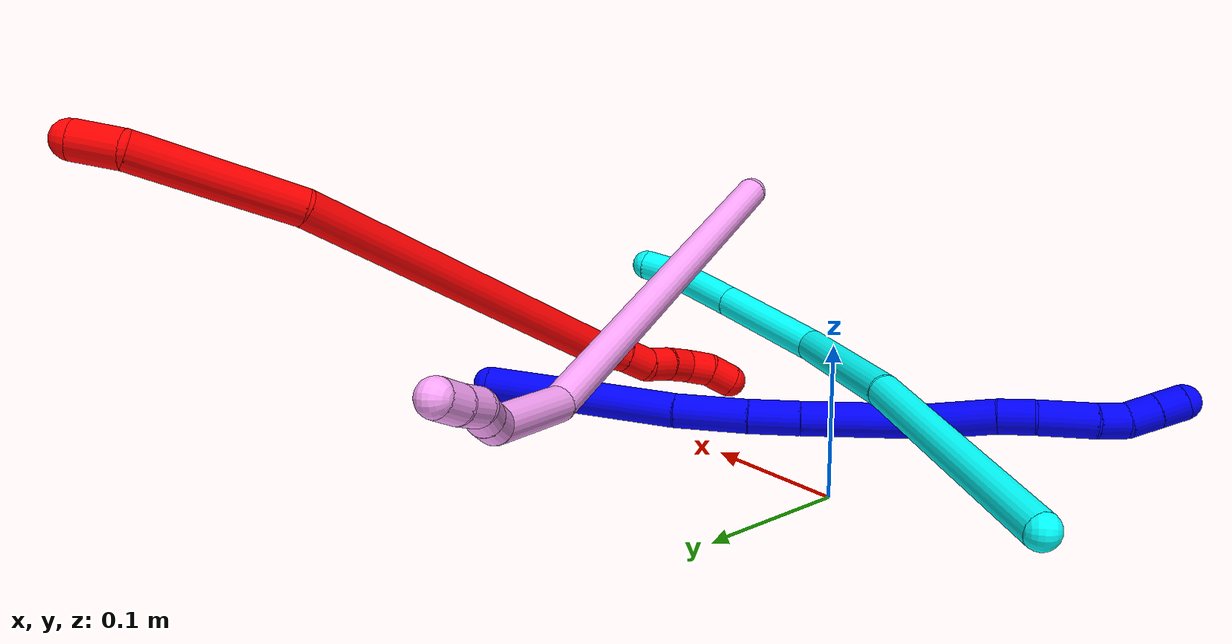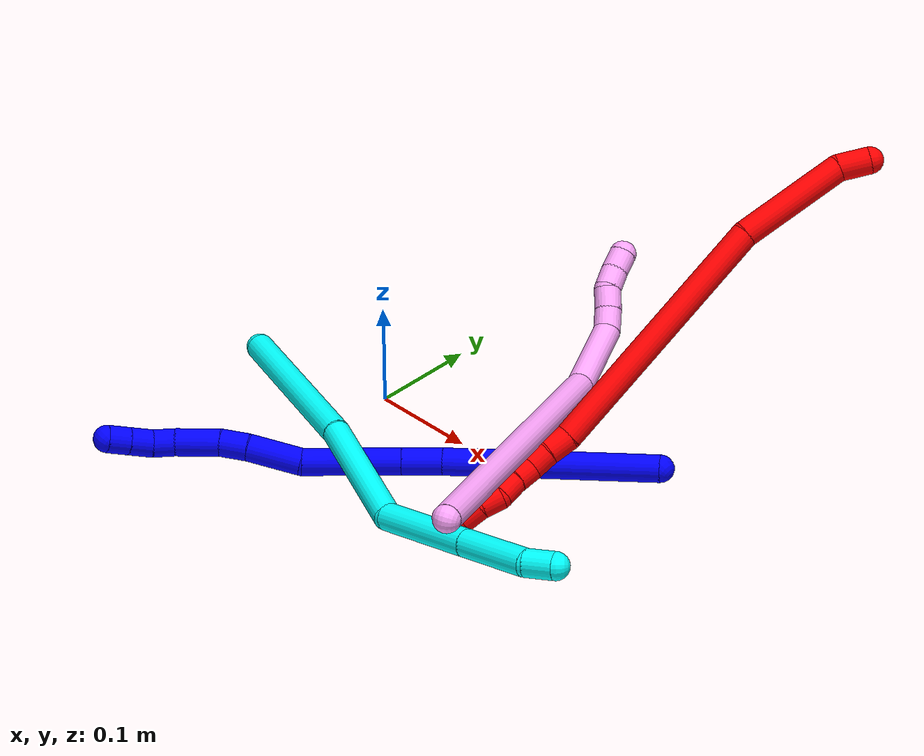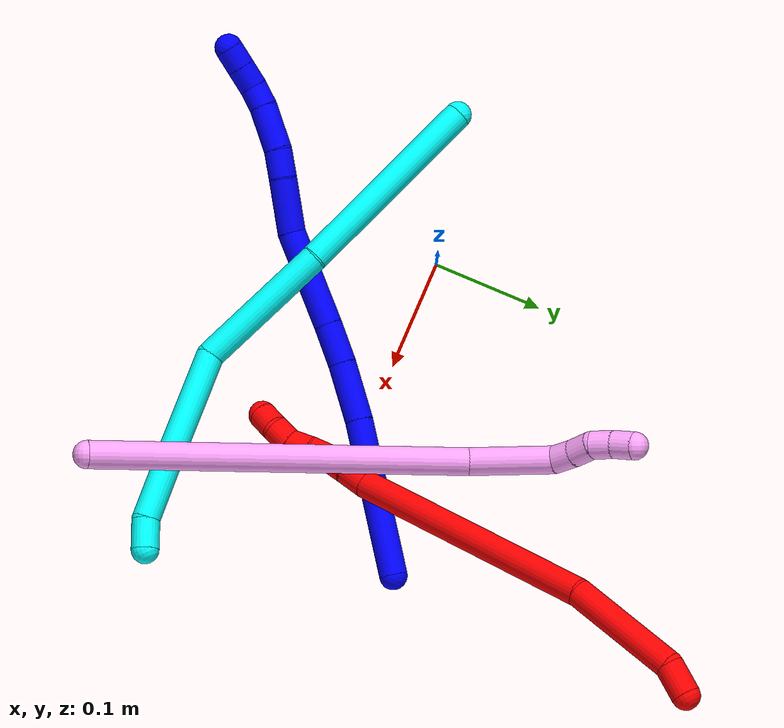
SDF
<sdf version="1.7">
 <world name="default">
  <plugin name="TubeGeneratorPlugin" filename="libtube_generator_plugin.so"/>
  <model name="photoneo_s_sensor">
   <static>1</static>
   <pose>0 0 2 1.57079 1.57079 3.14159</pose>
   <link name="link">
    <inertial><mass>0.1</mass></inertial>
    <sensor name="sensor" type="depth">
     <update_rate>30</update_rate>
     <camera>
      <horizontal_fov>1.22</horizontal_fov>
      <image><width>1920</width><height>1200</height><format>B8G8R8</format></image>
      <clip><near>0.1</near><far>4</far></clip>
      <depth_camera><output>points</output></depth_camera>
     </camera>
     <plugin name="camera_plugin" filename="libgazebo_ros_depth_camera.so">
      <baseline>0.2</baseline>
      <alwaysOn>1</alwaysOn>
      <updateRate>0.0</updateRate>
      <cameraName>camera_ir</cameraName>
      <imageTopicName>/camera/color/image_raw</imageTopicName>
      <cameraInfoTopicName>/camera/color/camera_info</cameraInfoTopicName>
      <depthImageTopicName>/camera/depth/image_raw</depthImageTopicName>
      <depthImageCameraInfoTopicName>/camera/depth/camera_info</depthImageCameraInfoTopicName>
      <pointCloudTopicName>/camera/depth/points</pointCloudTopicName>
      <frameName>fr_optical</frameName>
      <pointCloudCutoff>0.1</pointCloudCutoff>
      <pointCloudCutoffMax>2.0</pointCloudCutoffMax>
      <distortionK1>0</distortionK1>
      <distortionK2>0</distortionK2>
      <distortionK3>0</distortionK3>
      <distortionT1>0</distortionT1>
      <distortionT2>0</distortionT2>
      <CxPrime>0</CxPrime>
      <Cx>0</Cx>
      <Cy>0</Cy>
      <focalLength>0</focalLength>
      <hackBaseline>0</hackBaseline>
     </plugin>
    </sensor>
   </link>
  </model>
  <gravity>0 0 -9.8</gravity>
  <magnetic_field>6e-06 2.3e-05 -4.2e-05</magnetic_field>
  <atmosphere type="adiabatic"/>
  <physics name="default_physics" default="0" type="ode">
   <max_step_size>0.003</max_step_size>
   <real_time_factor>1</real_time_factor>
   <real_time_update_rate>1000</real_time_update_rate>
   <max_contacts>10000</max_contacts>
   <ode>
    <solver>
     <type>quick</type>
     <iters>100</iters>
     <sor>1.3</sor>
     <use_dynamic_moi_rescaling>0</use_dynamic_moi_rescaling>
    </solver>
    <constraints>
     <contact_max_correcting_vel>0</contact_max_correcting_vel>
     <contact_surface_layer>0.001</contact_surface_layer>
     <cfm>0</cfm>
     <erp>0.2</erp>
    </constraints>
   </ode>
  </physics>
  <scene><ambient>0.4 0.4 0.4 1</ambient><background>0.7 0.7 0.7 1</background><shadows>0</shadows></scene>
  <audio><device>default</device></audio>
  <spherical_coordinates>
   <surface_model>EARTH_WGS84</surface_model>
   <latitude_deg>0</latitude_deg>
   <longitude_deg>0</longitude_deg>
   <elevation>0</elevation>
   <heading_deg>0</heading_deg>
  </spherical_coordinates>
  <model name="bin">
   <static>1</static>
   <link name="bottom">
    <collision name="collision-bottom">
     <pose>0 0 -0.01 0 -0 0</pose>
     <geometry><box><size>0.8 0.6 0.02</size></box></geometry>
     <surface>
      <friction><ode><mu>100</mu><mu2>100</mu2></ode></friction>
      <contact><collide_bitmask>65535</collide_bitmask></contact>
     </surface>
    </collision>
   </link>
   <link name="west_wall">
    <collision name="collision-west_wall">
     <pose>-0.41 0 0.1 0 -0 0</pose>
     <geometry><box><size>0.02 0.6 0.2</size></box></geometry>
     <surface>
      <friction><ode><mu>100</mu><mu2>100</mu2></ode></friction>
      <contact><collide_bitmask>65535</collide_bitmask></contact>
     </surface>
    </collision>
   </link>
   <link name="east_wall">
    <collision name="collision-east_wall">
     <pose>0.41 0 0.1 0 -0 0</pose>
     <geometry><box><size>0.02 0.6 0.2</size></box></geometry>
     <surface>
      <friction><ode><mu>100</mu><mu2>100</mu2></ode></friction>
      <contact><collide_bitmask>65535</collide_bitmask></contact>
     </surface>
    </collision>
   </link>
   <link name="south_wall">
    <collision name="collision-south_wall">
     <pose>0 -0.31 0.1 0 -0 0</pose>
     <geometry><box><size>0.8 0.02 0.2</size></box></geometry>
     <surface>
      <friction><ode><mu>100</mu><mu2>100</mu2></ode></friction>
      <contact><collide_bitmask>65535</collide_bitmask></contact>
     </surface>
    </collision>
   </link>
   <link name="north_wall">
    <collision name="collision-north_wall">
     <pose>0 0.31 0.1 0 -0 0</pose>
     <geometry><box><size>0.8 0.02 0.2</size></box></geometry>
     <surface>
      <friction><ode><mu>100</mu><mu2>100</mu2></ode></friction>
      <contact><collide_bitmask>65535</collide_bitmask></contact>
     </surface>
    </collision>
   </link>
  </model>
  <model name="1">
   <static>0</static>
   <link name="1">
    <collision name="collision-cylinder-e_1_1_4">
     <pose>-0.028113 -0.036116 -0.05442 2.55568 -0.406457 -1.1987</pose>
     <geometry><cylinder><radius>0.0125</radius><length>0.142215</length></cylinder></geometry>
     <surface>
      <friction><ode><mu>1.16</mu><mu2>1.16</mu2><slip1>0</slip1><slip2>0</slip2></ode></friction>
      <contact><ode><kp>1e+06</kp><kd>1</kd><max_vel>0</max_vel><min_depth>0.001</min_depth></ode></contact>
     </surface>
    </collision>
    <visual name="visual-cylinder-e_1_1_4">
     <pose>-0.028113 -0.036116 -0.05442 2.55568 -0.406457 -1.1987</pose>
     <geometry><cylinder><radius>0.0125</radius><length>0.142215</length></cylinder></geometry>
     <material><ambient>0 0 1 1</ambient></material>
    </visual>
    <collision name="collision-cylinder-e_2_4_5">
     <pose>-0.068765 -0.085258 -0.128503 2.55652 -0.488634 -1.38286</pose>
     <geometry><cylinder><radius>0.0125</radius><length>0.053423</length></cylinder></geometry>
     <surface>
      <friction><ode><mu>1.16</mu><mu2>1.16</mu2><slip1>0</slip1><slip2>0</slip2></ode></friction>
      <contact><ode><kp>1e+06</kp><kd>1</kd><max_vel>0</max_vel><min_depth>0.001</min_depth></ode></contact>
     </surface>
    </collision>
    <visual name="visual-cylinder-e_2_4_5">
     <pose>-0.068765 -0.085258 -0.128503 2.55652 -0.488634 -1.38286</pose>
     <geometry><cylinder><radius>0.0125</radius><length>0.053423</length></cylinder></geometry>
     <material><ambient>0 0 1 1</ambient></material>
    </visual>
    <collision name="collision-cylinder-e_3_5_6">
     <pose>-0.091018 -0.107223 -0.161181 2.53977 -0.55153 -1.47863</pose>
     <geometry><cylinder><radius>0.0125</radius><length>0.037077</length></cylinder></geometry>
     <surface>
      <friction><ode><mu>1.16</mu><mu2>1.16</mu2><slip1>0</slip1><slip2>0</slip2></ode></friction>
      <contact><ode><kp>1e+06</kp><kd>1</kd><max_vel>0</max_vel><min_depth>0.001</min_depth></ode></contact>
     </surface>
    </collision>
    <visual name="visual-cylinder-e_3_5_6">
     <pose>-0.091018 -0.107223 -0.161181 2.53977 -0.55153 -1.47863</pose>
     <geometry><cylinder><radius>0.0125</radius><length>0.037077</length></cylinder></geometry>
     <material><ambient>0 0 1 1</ambient></material>
    </visual>
    <collision name="collision-cylinder-e_4_6_7">
     <pose>-0.12508 -0.137555 -0.204759 2.53089 -0.578246 -1.51286</pose>
     <geometry><cylinder><radius>0.0125</radius><length>0.089097</length></cylinder></geometry>
     <surface>
      <friction><ode><mu>1.16</mu><mu2>1.16</mu2><slip1>0</slip1><slip2>0</slip2></ode></friction>
      <contact><ode><kp>1e+06</kp><kd>1</kd><max_vel>0</max_vel><min_depth>0.001</min_depth></ode></contact>
     </surface>
    </collision>
    <visual name="visual-cylinder-e_4_6_7">
     <pose>-0.12508 -0.137555 -0.204759 2.53089 -0.578246 -1.51286</pose>
     <geometry><cylinder><radius>0.0125</radius><length>0.089097</length></cylinder></geometry>
     <material><ambient>0 0 1 1</ambient></material>
    </visual>
    <collision name="collision-cylinder-e_5_7_8">
     <pose>-0.160595 -0.165767 -0.256257 2.82669 -0.469372 -1.96924</pose>
     <geometry><cylinder><radius>0.0125</radius><length>0.049376</length></cylinder></geometry>
     <surface>
      <friction><ode><mu>1.16</mu><mu2>1.16</mu2><slip1>0</slip1><slip2>0</slip2></ode></friction>
      <contact><ode><kp>1e+06</kp><kd>1</kd><max_vel>0</max_vel><min_depth>0.001</min_depth></ode></contact>
     </surface>
    </collision>
    <visual name="visual-cylinder-e_5_7_8">
     <pose>-0.160595 -0.165767 -0.256257 2.82669 -0.469372 -1.96924</pose>
     <geometry><cylinder><radius>0.0125</radius><length>0.049376</length></cylinder></geometry>
     <material><ambient>0 0 1 1</ambient></material>
    </visual>
    <collision name="collision-cylinder-e_6_8_9">
     <pose>-0.177135 -0.177431 -0.287728 2.71057 -0.433912 -1.5777</pose>
     <geometry><cylinder><radius>0.0125</radius><length>0.02556</length></cylinder></geometry>
     <surface>
      <friction><ode><mu>1.16</mu><mu2>1.16</mu2><slip1>0</slip1><slip2>0</slip2></ode></friction>
      <contact><ode><kp>1e+06</kp><kd>1</kd><max_vel>0</max_vel><min_depth>0.001</min_depth></ode></contact>
     </surface>
    </collision>
    <visual name="visual-cylinder-e_6_8_9">
     <pose>-0.177135 -0.177431 -0.287728 2.71057 -0.433912 -1.5777</pose>
     <geometry><cylinder><radius>0.0125</radius><length>0.02556</length></cylinder></geometry>
     <material><ambient>0 0 1 1</ambient></material>
    </visual>
    <collision name="collision-cylinder-e_7_9_10">
     <pose>-0.192778 -0.192266 -0.312857 2.54133 -0.526087 -1.43211</pose>
     <geometry><cylinder><radius>0.0125</radius><length>0.040903</length></cylinder></geometry>
     <surface>
      <friction><ode><mu>1.16</mu><mu2>1.16</mu2><slip1>0</slip1><slip2>0</slip2></ode></friction>
      <contact><ode><kp>1e+06</kp><kd>1</kd><max_vel>0</max_vel><min_depth>0.001</min_depth></ode></contact>
     </surface>
    </collision>
    <visual name="visual-cylinder-e_7_9_10">
     <pose>-0.192778 -0.192266 -0.312857 2.54133 -0.526087 -1.43211</pose>
     <geometry><cylinder><radius>0.0125</radius><length>0.040903</length></cylinder></geometry>
     <material><ambient>0 0 1 1</ambient></material>
    </visual>
    <collision name="collision-cylinder-e_8_10_11">
     <pose>-0.209301 -0.207286 -0.333842 2.47482 -0.655504 -1.55244</pose>
     <geometry><cylinder><radius>0.0125</radius><length>0.020517</length></cylinder></geometry>
     <surface>
      <friction><ode><mu>1.16</mu><mu2>1.16</mu2><slip1>0</slip1><slip2>0</slip2></ode></friction>
      <contact><ode><kp>1e+06</kp><kd>1</kd><max_vel>0</max_vel><min_depth>0.001</min_depth></ode></contact>
     </surface>
    </collision>
    <visual name="visual-cylinder-e_8_10_11">
     <pose>-0.209301 -0.207286 -0.333842 2.47482 -0.655504 -1.55244</pose>
     <geometry><cylinder><radius>0.0125</radius><length>0.020517</length></cylinder></geometry>
     <material><ambient>0 0 1 1</ambient></material>
    </visual>
    <collision name="collision-cylinder-e_9_11_12">
     <pose>-0.223952 -0.214993 -0.346605 2.74374 -0.882118 -2.33441</pose>
     <geometry><cylinder><radius>0.0125</radius><length>0.021752</length></cylinder></geometry>
     <surface>
      <friction><ode><mu>1.16</mu><mu2>1.16</mu2><slip1>0</slip1><slip2>0</slip2></ode></friction>
      <contact><ode><kp>1e+06</kp><kd>1</kd><max_vel>0</max_vel><min_depth>0.001</min_depth></ode></contact>
     </surface>
    </collision>
    <visual name="visual-cylinder-e_9_11_12">
     <pose>-0.223952 -0.214993 -0.346605 2.74374 -0.882118 -2.33441</pose>
     <geometry><cylinder><radius>0.0125</radius><length>0.021752</length></cylinder></geometry>
     <material><ambient>0 0 1 1</ambient></material>
    </visual>
    <collision name="collision-cylinder-e_10_12_2">
     <pose>-0.240101 -0.220102 -0.358875 2.75072 -0.882276 -2.34759</pose>
     <geometry><cylinder><radius>0.0125</radius><length>0.02008</length></cylinder></geometry>
     <surface>
      <friction><ode><mu>1.16</mu><mu2>1.16</mu2><slip1>0</slip1><slip2>0</slip2></ode></friction>
      <contact><ode><kp>1e+06</kp><kd>1</kd><max_vel>0</max_vel><min_depth>0.001</min_depth></ode></contact>
     </surface>
    </collision>
    <visual name="visual-cylinder-e_10_12_2">
     <pose>-0.240101 -0.220102 -0.358875 2.75072 -0.882276 -2.34759</pose>
     <geometry><cylinder><radius>0.0125</radius><length>0.02008</length></cylinder></geometry>
     <material><ambient>0 0 1 1</ambient></material>
    </visual>
    <collision name="collision-sphere-2">
     <pose>-0.247854 -0.222532 -0.364773 0 -0 0</pose>
     <geometry><sphere><radius>0.0125</radius></sphere></geometry>
     <surface>
      <friction><ode><mu>1.16</mu><mu2>1.16</mu2><slip1>0</slip1><slip2>0</slip2></ode></friction>
      <contact><ode><kp>1e+06</kp><kd>1</kd><max_vel>0</max_vel><min_depth>0.001</min_depth></ode></contact>
     </surface>
    </collision>
    <visual name="visual-sphere-2">
     <pose>-0.247854 -0.222532 -0.364773 0 -0 0</pose>
     <geometry><sphere><radius>0.0125</radius></sphere></geometry>
     <material><ambient>0 0 1 1</ambient></material>
    </visual>
    <collision name="collision-sphere-12">
     <pose>-0.232349 -0.217671 -0.352977 0 -0 0</pose>
     <geometry><sphere><radius>0.0125</radius></sphere></geometry>
     <surface>
      <friction><ode><mu>1.16</mu><mu2>1.16</mu2><slip1>0</slip1><slip2>0</slip2></ode></friction>
      <contact><ode><kp>1e+06</kp><kd>1</kd><max_vel>0</max_vel><min_depth>0.001</min_depth></ode></contact>
     </surface>
    </collision>
    <visual name="visual-sphere-12">
     <pose>-0.232349 -0.217671 -0.352977 0 -0 0</pose>
     <geometry><sphere><radius>0.0125</radius></sphere></geometry>
     <material><ambient>0 0 1 1</ambient></material>
    </visual>
    <collision name="collision-sphere-11">
     <pose>-0.215554 -0.212315 -0.340233 0 -0 0</pose>
     <geometry><sphere><radius>0.0125</radius></sphere></geometry>
     <surface>
      <friction><ode><mu>1.16</mu><mu2>1.16</mu2><slip1>0</slip1><slip2>0</slip2></ode></friction>
      <contact><ode><kp>1e+06</kp><kd>1</kd><max_vel>0</max_vel><min_depth>0.001</min_depth></ode></contact>
     </surface>
    </collision>
    <visual name="visual-sphere-11">
     <pose>-0.215554 -0.212315 -0.340233 0 -0 0</pose>
     <geometry><sphere><radius>0.0125</radius></sphere></geometry>
     <material><ambient>0 0 1 1</ambient></material>
    </visual>
    <collision name="collision-sphere-10">
     <pose>-0.203048 -0.202256 -0.327452 0 -0 0</pose>
     <geometry><sphere><radius>0.0125</radius></sphere></geometry>
     <surface>
      <friction><ode><mu>1.16</mu><mu2>1.16</mu2><slip1>0</slip1><slip2>0</slip2></ode></friction>
      <contact><ode><kp>1e+06</kp><kd>1</kd><max_vel>0</max_vel><min_depth>0.001</min_depth></ode></contact>
     </surface>
    </collision>
    <visual name="visual-sphere-10">
     <pose>-0.203048 -0.202256 -0.327452 0 -0 0</pose>
     <geometry><sphere><radius>0.0125</radius></sphere></geometry>
     <material><ambient>0 0 1 1</ambient></material>
    </visual>
    <collision name="collision-sphere-9">
     <pose>-0.182508 -0.182276 -0.298263 0 -0 0</pose>
     <geometry><sphere><radius>0.0125</radius></sphere></geometry>
     <surface>
      <friction><ode><mu>1.16</mu><mu2>1.16</mu2><slip1>0</slip1><slip2>0</slip2></ode></friction>
      <contact><ode><kp>1e+06</kp><kd>1</kd><max_vel>0</max_vel><min_depth>0.001</min_depth></ode></contact>
     </surface>
    </collision>
    <visual name="visual-sphere-9">
     <pose>-0.182508 -0.182276 -0.298263 0 -0 0</pose>
     <geometry><sphere><radius>0.0125</radius></sphere></geometry>
     <material><ambient>0 0 1 1</ambient></material>
    </visual>
    <collision name="collision-sphere-4">
     <pose>-0.056226 -0.072232 -0.10884 0 -0 0</pose>
     <geometry><sphere><radius>0.0125</radius></sphere></geometry>
     <surface>
      <friction><ode><mu>1.16</mu><mu2>1.16</mu2><slip1>0</slip1><slip2>0</slip2></ode></friction>
      <contact><ode><kp>1e+06</kp><kd>1</kd><max_vel>0</max_vel><min_depth>0.001</min_depth></ode></contact>
     </surface>
    </collision>
    <visual name="visual-sphere-4">
     <pose>-0.056226 -0.072232 -0.10884 0 -0 0</pose>
     <geometry><sphere><radius>0.0125</radius></sphere></geometry>
     <material><ambient>0 0 1 1</ambient></material>
    </visual>
    <collision name="collision-sphere-1">
     <geometry><sphere><radius>0.0125</radius></sphere></geometry>
     <surface>
      <friction><ode><mu>1.16</mu><mu2>1.16</mu2><slip1>0</slip1><slip2>0</slip2></ode></friction>
      <contact><ode><kp>1e+06</kp><kd>1</kd><max_vel>0</max_vel><min_depth>0.001</min_depth></ode></contact>
     </surface>
    </collision>
    <visual name="visual-sphere-1">
     <geometry><sphere><radius>0.0125</radius></sphere></geometry>
     <material><ambient>0 0 1 1</ambient></material>
    </visual>
    <collision name="collision-sphere-8">
     <pose>-0.171762 -0.172587 -0.277193 0 -0 0</pose>
     <geometry><sphere><radius>0.0125</radius></sphere></geometry>
     <surface>
      <friction><ode><mu>1.16</mu><mu2>1.16</mu2><slip1>0</slip1><slip2>0</slip2></ode></friction>
      <contact><ode><kp>1e+06</kp><kd>1</kd><max_vel>0</max_vel><min_depth>0.001</min_depth></ode></contact>
     </surface>
    </collision>
    <visual name="visual-sphere-8">
     <pose>-0.171762 -0.172587 -0.277193 0 -0 0</pose>
     <geometry><sphere><radius>0.0125</radius></sphere></geometry>
     <material><ambient>0 0 1 1</ambient></material>
    </visual>
    <collision name="collision-sphere-5">
     <pose>-0.081304 -0.098283 -0.148165 0 -0 0</pose>
     <geometry><sphere><radius>0.0125</radius></sphere></geometry>
     <surface>
      <friction><ode><mu>1.16</mu><mu2>1.16</mu2><slip1>0</slip1><slip2>0</slip2></ode></friction>
      <contact><ode><kp>1e+06</kp><kd>1</kd><max_vel>0</max_vel><min_depth>0.001</min_depth></ode></contact>
     </surface>
    </collision>
    <visual name="visual-sphere-5">
     <pose>-0.081304 -0.098283 -0.148165 0 -0 0</pose>
     <geometry><sphere><radius>0.0125</radius></sphere></geometry>
     <material><ambient>0 0 1 1</ambient></material>
    </visual>
    <collision name="collision-sphere-6">
     <pose>-0.100732 -0.116162 -0.174196 0 -0 0</pose>
     <geometry><sphere><radius>0.0125</radius></sphere></geometry>
     <surface>
      <friction><ode><mu>1.16</mu><mu2>1.16</mu2><slip1>0</slip1><slip2>0</slip2></ode></friction>
      <contact><ode><kp>1e+06</kp><kd>1</kd><max_vel>0</max_vel><min_depth>0.001</min_depth></ode></contact>
     </surface>
    </collision>
    <visual name="visual-sphere-6">
     <pose>-0.100732 -0.116162 -0.174196 0 -0 0</pose>
     <geometry><sphere><radius>0.0125</radius></sphere></geometry>
     <material><ambient>0 0 1 1</ambient></material>
    </visual>
    <collision name="collision-sphere-7">
     <pose>-0.149428 -0.158948 -0.235322 0 -0 0</pose>
     <geometry><sphere><radius>0.0125</radius></sphere></geometry>
     <surface>
      <friction><ode><mu>1.16</mu><mu2>1.16</mu2><slip1>0</slip1><slip2>0</slip2></ode></friction>
      <contact><ode><kp>1e+06</kp><kd>1</kd><max_vel>0</max_vel><min_depth>0.001</min_depth></ode></contact>
     </surface>
    </collision>
    <visual name="visual-sphere-7">
     <pose>-0.149428 -0.158948 -0.235322 0 -0 0</pose>
     <geometry><sphere><radius>0.0125</radius></sphere></geometry>
     <material><ambient>0 0 1 1</ambient></material>
    </visual>
    <inertial>
     <pose>-0.11304 -0.119711 -0.186446 0 -0 0</pose>
     <mass>0.5</mass>
     <inertia>
      <ixx>-0.000237</ixx>
      <ixy>0</ixy>
      <ixz>0</ixz>
      <iyy>-0.000312</iyy>
      <iyz>0</iyz>
      <izz>0.0003</izz>
     </inertia>
    </inertial>
   </link>
   <pose>0.272626 0.075067 0.023301 1.86138 0.451618 1.70034</pose>
  </model>
  <model name="2">
   <static>0</static>
   <link name="2">
    <collision name="collision-cylinder-e_1_1_4">
     <pose>5.1e-05 -6.2e-05 -0.014727 3.13739 0.00346 1.37688</pose>
     <geometry><cylinder><radius>0.0125</radius><length>0.029455</length></cylinder></geometry>
     <surface>
      <friction><ode><mu>1.16</mu><mu2>1.16</mu2><slip1>0</slip1><slip2>0</slip2></ode></friction>
      <contact><ode><kp>1e+06</kp><kd>1</kd><max_vel>0</max_vel><min_depth>0.001</min_depth></ode></contact>
     </surface>
    </collision>
    <visual name="visual-cylinder-e_1_1_4">
     <pose>5.1e-05 -6.2e-05 -0.014727 3.13739 0.00346 1.37688</pose>
     <geometry><cylinder><radius>0.0125</radius><length>0.029455</length></cylinder></geometry>
     <material><ambient>1 0 0 1</ambient></material>
    </visual>
    <collision name="collision-cylinder-e_2_4_5">
     <pose>0.000616 -0.021079 -0.077344 2.72912 0.00984 0.047025</pose>
     <geometry><cylinder><radius>0.0125</radius><length>0.104551</length></cylinder></geometry>
     <surface>
      <friction><ode><mu>1.16</mu><mu2>1.16</mu2><slip1>0</slip1><slip2>0</slip2></ode></friction>
      <contact><ode><kp>1e+06</kp><kd>1</kd><max_vel>0</max_vel><min_depth>0.001</min_depth></ode></contact>
     </surface>
    </collision>
    <visual name="visual-cylinder-e_2_4_5">
     <pose>0.000616 -0.021079 -0.077344 2.72912 0.00984 0.047025</pose>
     <geometry><cylinder><radius>0.0125</radius><length>0.104551</length></cylinder></geometry>
     <material><ambient>1 0 0 1</ambient></material>
    </visual>
    <collision name="collision-cylinder-e_3_5_6">
     <pose>0.010583 -0.113375 -0.222741 2.50994 0.078079 0.23794</pose>
     <geometry><cylinder><radius>0.0125</radius><length>0.242378</length></cylinder></geometry>
     <surface>
      <friction><ode><mu>1.16</mu><mu2>1.16</mu2><slip1>0</slip1><slip2>0</slip2></ode></friction>
      <contact><ode><kp>1e+06</kp><kd>1</kd><max_vel>0</max_vel><min_depth>0.001</min_depth></ode></contact>
     </surface>
    </collision>
    <visual name="visual-cylinder-e_3_5_6">
     <pose>0.010583 -0.113375 -0.222741 2.50994 0.078079 0.23794</pose>
     <geometry><cylinder><radius>0.0125</radius><length>0.242378</length></cylinder></geometry>
     <material><ambient>1 0 0 1</ambient></material>
    </visual>
    <collision name="collision-cylinder-e_4_6_7">
     <pose>0.019433 -0.18956 -0.330535 2.70143 -0.053021 -0.235965</pose>
     <geometry><cylinder><radius>0.0125</radius><length>0.022771</length></cylinder></geometry>
     <surface>
      <friction><ode><mu>1.16</mu><mu2>1.16</mu2><slip1>0</slip1><slip2>0</slip2></ode></friction>
      <contact><ode><kp>1e+06</kp><kd>1</kd><max_vel>0</max_vel><min_depth>0.001</min_depth></ode></contact>
     </surface>
    </collision>
    <visual name="visual-cylinder-e_4_6_7">
     <pose>0.019433 -0.18956 -0.330535 2.70143 -0.053021 -0.235965</pose>
     <geometry><cylinder><radius>0.0125</radius><length>0.022771</length></cylinder></geometry>
     <material><ambient>1 0 0 1</ambient></material>
    </visual>
    <collision name="collision-cylinder-e_5_7_8">
     <pose>0.019745 -0.199409 -0.349781 2.63226 0.089021 0.338915</pose>
     <geometry><cylinder><radius>0.0125</radius><length>0.020607</length></cylinder></geometry>
     <surface>
      <friction><ode><mu>1.16</mu><mu2>1.16</mu2><slip1>0</slip1><slip2>0</slip2></ode></friction>
      <contact><ode><kp>1e+06</kp><kd>1</kd><max_vel>0</max_vel><min_depth>0.001</min_depth></ode></contact>
     </surface>
    </collision>
    <visual name="visual-cylinder-e_5_7_8">
     <pose>0.019745 -0.199409 -0.349781 2.63226 0.089021 0.338915</pose>
     <geometry><cylinder><radius>0.0125</radius><length>0.020607</length></cylinder></geometry>
     <material><ambient>1 0 0 1</ambient></material>
    </visual>
    <collision name="collision-cylinder-e_6_8_9">
     <pose>0.017668 -0.209638 -0.366728 2.56226 -0.303891 -0.949195</pose>
     <geometry><cylinder><radius>0.0125</radius><length>0.020004</length></cylinder></geometry>
     <surface>
      <friction><ode><mu>1.16</mu><mu2>1.16</mu2><slip1>0</slip1><slip2>0</slip2></ode></friction>
      <contact><ode><kp>1e+06</kp><kd>1</kd><max_vel>0</max_vel><min_depth>0.001</min_depth></ode></contact>
     </surface>
    </collision>
    <visual name="visual-cylinder-e_6_8_9">
     <pose>0.017668 -0.209638 -0.366728 2.56226 -0.303891 -0.949195</pose>
     <geometry><cylinder><radius>0.0125</radius><length>0.020004</length></cylinder></geometry>
     <material><ambient>1 0 0 1</ambient></material>
    </visual>
    <collision name="collision-cylinder-e_7_9_10">
     <pose>0.012553 -0.221089 -0.382334 2.45651 -0.212393 -0.580949</pose>
     <geometry><cylinder><radius>0.0125</radius><length>0.020132</length></cylinder></geometry>
     <surface>
      <friction><ode><mu>1.16</mu><mu2>1.16</mu2><slip1>0</slip1><slip2>0</slip2></ode></friction>
      <contact><ode><kp>1e+06</kp><kd>1</kd><max_vel>0</max_vel><min_depth>0.001</min_depth></ode></contact>
     </surface>
    </collision>
    <visual name="visual-cylinder-e_7_9_10">
     <pose>0.012553 -0.221089 -0.382334 2.45651 -0.212393 -0.580949</pose>
     <geometry><cylinder><radius>0.0125</radius><length>0.020132</length></cylinder></geometry>
     <material><ambient>1 0 0 1</ambient></material>
    </visual>
    <collision name="collision-cylinder-e_8_10_11">
     <pose>0.009651 -0.230094 -0.399528 2.85911 -0.078111 -0.536386</pose>
     <geometry><cylinder><radius>0.0125</radius><length>0.02</length></cylinder></geometry>
     <surface>
      <friction><ode><mu>1.16</mu><mu2>1.16</mu2><slip1>0</slip1><slip2>0</slip2></ode></friction>
      <contact><ode><kp>1e+06</kp><kd>1</kd><max_vel>0</max_vel><min_depth>0.001</min_depth></ode></contact>
     </surface>
    </collision>
    <visual name="visual-cylinder-e_8_10_11">
     <pose>0.009651 -0.230094 -0.399528 2.85911 -0.078111 -0.536386</pose>
     <geometry><cylinder><radius>0.0125</radius><length>0.02</length></cylinder></geometry>
     <material><ambient>1 0 0 1</ambient></material>
    </visual>
    <collision name="collision-cylinder-e_9_11_2">
     <pose>0.010882 -0.236451 -0.418276 2.76967 0.201515 0.986213</pose>
     <geometry><cylinder><radius>0.0125</radius><length>0.020101</length></cylinder></geometry>
     <surface>
      <friction><ode><mu>1.16</mu><mu2>1.16</mu2><slip1>0</slip1><slip2>0</slip2></ode></friction>
      <contact><ode><kp>1e+06</kp><kd>1</kd><max_vel>0</max_vel><min_depth>0.001</min_depth></ode></contact>
     </surface>
    </collision>
    <visual name="visual-cylinder-e_9_11_2">
     <pose>0.010882 -0.236451 -0.418276 2.76967 0.201515 0.986213</pose>
     <geometry><cylinder><radius>0.0125</radius><length>0.020101</length></cylinder></geometry>
     <material><ambient>1 0 0 1</ambient></material>
    </visual>
    <collision name="collision-sphere-2">
     <pose>0.012894 -0.24003 -0.42745 0 -0 0</pose>
     <geometry><sphere><radius>0.0125</radius></sphere></geometry>
     <surface>
      <friction><ode><mu>1.16</mu><mu2>1.16</mu2><slip1>0</slip1><slip2>0</slip2></ode></friction>
      <contact><ode><kp>1e+06</kp><kd>1</kd><max_vel>0</max_vel><min_depth>0.001</min_depth></ode></contact>
     </surface>
    </collision>
    <visual name="visual-sphere-2">
     <pose>0.012894 -0.24003 -0.42745 0 -0 0</pose>
     <geometry><sphere><radius>0.0125</radius></sphere></geometry>
     <material><ambient>1 0 0 1</ambient></material>
    </visual>
    <collision name="collision-sphere-11">
     <pose>0.008871 -0.232873 -0.409103 0 -0 0</pose>
     <geometry><sphere><radius>0.0125</radius></sphere></geometry>
     <surface>
      <friction><ode><mu>1.16</mu><mu2>1.16</mu2><slip1>0</slip1><slip2>0</slip2></ode></friction>
      <contact><ode><kp>1e+06</kp><kd>1</kd><max_vel>0</max_vel><min_depth>0.001</min_depth></ode></contact>
     </surface>
    </collision>
    <visual name="visual-sphere-11">
     <pose>0.008871 -0.232873 -0.409103 0 -0 0</pose>
     <geometry><sphere><radius>0.0125</radius></sphere></geometry>
     <material><ambient>1 0 0 1</ambient></material>
    </visual>
    <collision name="collision-sphere-10">
     <pose>0.010431 -0.227315 -0.389954 0 -0 0</pose>
     <geometry><sphere><radius>0.0125</radius></sphere></geometry>
     <surface>
      <friction><ode><mu>1.16</mu><mu2>1.16</mu2><slip1>0</slip1><slip2>0</slip2></ode></friction>
      <contact><ode><kp>1e+06</kp><kd>1</kd><max_vel>0</max_vel><min_depth>0.001</min_depth></ode></contact>
     </surface>
    </collision>
    <visual name="visual-sphere-10">
     <pose>0.010431 -0.227315 -0.389954 0 -0 0</pose>
     <geometry><sphere><radius>0.0125</radius></sphere></geometry>
     <material><ambient>1 0 0 1</ambient></material>
    </visual>
    <collision name="collision-sphere-9">
     <pose>0.014675 -0.214863 -0.374714 0 -0 0</pose>
     <geometry><sphere><radius>0.0125</radius></sphere></geometry>
     <surface>
      <friction><ode><mu>1.16</mu><mu2>1.16</mu2><slip1>0</slip1><slip2>0</slip2></ode></friction>
      <contact><ode><kp>1e+06</kp><kd>1</kd><max_vel>0</max_vel><min_depth>0.001</min_depth></ode></contact>
     </surface>
    </collision>
    <visual name="visual-sphere-9">
     <pose>0.014675 -0.214863 -0.374714 0 -0 0</pose>
     <geometry><sphere><radius>0.0125</radius></sphere></geometry>
     <material><ambient>1 0 0 1</ambient></material>
    </visual>
    <collision name="collision-sphere-4">
     <pose>0.000102 -0.000124 -0.029455 0 -0 0</pose>
     <geometry><sphere><radius>0.0125</radius></sphere></geometry>
     <surface>
      <friction><ode><mu>1.16</mu><mu2>1.16</mu2><slip1>0</slip1><slip2>0</slip2></ode></friction>
      <contact><ode><kp>1e+06</kp><kd>1</kd><max_vel>0</max_vel><min_depth>0.001</min_depth></ode></contact>
     </surface>
    </collision>
    <visual name="visual-sphere-4">
     <pose>0.000102 -0.000124 -0.029455 0 -0 0</pose>
     <geometry><sphere><radius>0.0125</radius></sphere></geometry>
     <material><ambient>1 0 0 1</ambient></material>
    </visual>
    <collision name="collision-sphere-1">
     <geometry><sphere><radius>0.0125</radius></sphere></geometry>
     <surface>
      <friction><ode><mu>1.16</mu><mu2>1.16</mu2><slip1>0</slip1><slip2>0</slip2></ode></friction>
      <contact><ode><kp>1e+06</kp><kd>1</kd><max_vel>0</max_vel><min_depth>0.001</min_depth></ode></contact>
     </surface>
    </collision>
    <visual name="visual-sphere-1">
     <geometry><sphere><radius>0.0125</radius></sphere></geometry>
     <material><ambient>1 0 0 1</ambient></material>
    </visual>
    <collision name="collision-sphere-8">
     <pose>0.020661 -0.204413 -0.358741 0 -0 0</pose>
     <geometry><sphere><radius>0.0125</radius></sphere></geometry>
     <surface>
      <friction><ode><mu>1.16</mu><mu2>1.16</mu2><slip1>0</slip1><slip2>0</slip2></ode></friction>
      <contact><ode><kp>1e+06</kp><kd>1</kd><max_vel>0</max_vel><min_depth>0.001</min_depth></ode></contact>
     </surface>
    </collision>
    <visual name="visual-sphere-8">
     <pose>0.020661 -0.204413 -0.358741 0 -0 0</pose>
     <geometry><sphere><radius>0.0125</radius></sphere></geometry>
     <material><ambient>1 0 0 1</ambient></material>
    </visual>
    <collision name="collision-sphere-5">
     <pose>0.001131 -0.042034 -0.125233 0 -0 0</pose>
     <geometry><sphere><radius>0.0125</radius></sphere></geometry>
     <surface>
      <friction><ode><mu>1.16</mu><mu2>1.16</mu2><slip1>0</slip1><slip2>0</slip2></ode></friction>
      <contact><ode><kp>1e+06</kp><kd>1</kd><max_vel>0</max_vel><min_depth>0.001</min_depth></ode></contact>
     </surface>
    </collision>
    <visual name="visual-sphere-5">
     <pose>0.001131 -0.042034 -0.125233 0 -0 0</pose>
     <geometry><sphere><radius>0.0125</radius></sphere></geometry>
     <material><ambient>1 0 0 1</ambient></material>
    </visual>
    <collision name="collision-sphere-6">
     <pose>0.020036 -0.184716 -0.320249 0 -0 0</pose>
     <geometry><sphere><radius>0.0125</radius></sphere></geometry>
     <surface>
      <friction><ode><mu>1.16</mu><mu2>1.16</mu2><slip1>0</slip1><slip2>0</slip2></ode></friction>
      <contact><ode><kp>1e+06</kp><kd>1</kd><max_vel>0</max_vel><min_depth>0.001</min_depth></ode></contact>
     </surface>
    </collision>
    <visual name="visual-sphere-6">
     <pose>0.020036 -0.184716 -0.320249 0 -0 0</pose>
     <geometry><sphere><radius>0.0125</radius></sphere></geometry>
     <material><ambient>1 0 0 1</ambient></material>
    </visual>
    <collision name="collision-sphere-7">
     <pose>0.018829 -0.194405 -0.340821 0 -0 0</pose>
     <geometry><sphere><radius>0.0125</radius></sphere></geometry>
     <surface>
      <friction><ode><mu>1.16</mu><mu2>1.16</mu2><slip1>0</slip1><slip2>0</slip2></ode></friction>
      <contact><ode><kp>1e+06</kp><kd>1</kd><max_vel>0</max_vel><min_depth>0.001</min_depth></ode></contact>
     </surface>
    </collision>
    <visual name="visual-sphere-7">
     <pose>0.018829 -0.194405 -0.340821 0 -0 0</pose>
     <geometry><sphere><radius>0.0125</radius></sphere></geometry>
     <material><ambient>1 0 0 1</ambient></material>
    </visual>
    <inertial>
     <pose>0.008997 -0.112221 -0.217348 0 -0 0</pose>
     <mass>0.5</mass>
     <inertia>
      <ixx>0.001555</ixx>
      <ixy>0</ixy>
      <ixz>0</ixz>
      <iyy>-0.000754</iyy>
      <iyz>0</iyz>
      <izz>0.000621</izz>
     </inertia>
    </inertial>
   </link>
   <pose>0.27733 0.342042 0.227104 1.20327 0.997581 2.15214</pose>
  </model>
  <model name="3">
   <static>0</static>
   <link name="3">
    <collision name="collision-cylinder-e_1_1_4">
     <pose>0.067947 -0.050405 0.037836 0.92689 0.822957 0.429445</pose>
     <geometry><cylinder><radius>0.0125</radius><length>0.185354</length></cylinder></geometry>
     <surface>
      <friction><ode><mu>1.16</mu><mu2>1.16</mu2><slip1>0</slip1><slip2>0</slip2></ode></friction>
      <contact><ode><kp>1e+06</kp><kd>1</kd><max_vel>0</max_vel><min_depth>0.001</min_depth></ode></contact>
     </surface>
    </collision>
    <visual name="visual-cylinder-e_1_1_4">
     <pose>0.067947 -0.050405 0.037836 0.92689 0.822957 0.429445</pose>
     <geometry><cylinder><radius>0.0125</radius><length>0.185354</length></cylinder></geometry>
     <material><ambient>0.003922 1 0.996078 1</ambient></material>
    </visual>
    <collision name="collision-cylinder-e_2_4_5">
     <pose>0.188581 -0.127484 0.098719 0.858214 0.98113 0.479362</pose>
     <geometry><cylinder><radius>0.0125</radius><length>0.126785</length></cylinder></geometry>
     <surface>
      <friction><ode><mu>1.16</mu><mu2>1.16</mu2><slip1>0</slip1><slip2>0</slip2></ode></friction>
      <contact><ode><kp>1e+06</kp><kd>1</kd><max_vel>0</max_vel><min_depth>0.001</min_depth></ode></contact>
     </surface>
    </collision>
    <visual name="visual-cylinder-e_2_4_5">
     <pose>0.188581 -0.127484 0.098719 0.858214 0.98113 0.479362</pose>
     <geometry><cylinder><radius>0.0125</radius><length>0.126785</length></cylinder></geometry>
     <material><ambient>0.003922 1 0.996078 1</ambient></material>
    </visual>
    <collision name="collision-cylinder-e_3_5_6">
     <pose>0.26402 -0.176351 0.1556 0.580542 0.512215 0.15612</pose>
     <geometry><cylinder><radius>0.0125</radius><length>0.092841</length></cylinder></geometry>
     <surface>
      <friction><ode><mu>1.16</mu><mu2>1.16</mu2><slip1>0</slip1><slip2>0</slip2></ode></friction>
      <contact><ode><kp>1e+06</kp><kd>1</kd><max_vel>0</max_vel><min_depth>0.001</min_depth></ode></contact>
     </surface>
    </collision>
    <visual name="visual-cylinder-e_3_5_6">
     <pose>0.26402 -0.176351 0.1556 0.580542 0.512215 0.15612</pose>
     <geometry><cylinder><radius>0.0125</radius><length>0.092841</length></cylinder></geometry>
     <material><ambient>0.003922 1 0.996078 1</ambient></material>
    </visual>
    <collision name="collision-cylinder-e_4_6_7">
     <pose>0.303241 -0.214478 0.214472 0.566718 0.506632 0.150483</pose>
     <geometry><cylinder><radius>0.0125</radius><length>0.067884</length></cylinder></geometry>
     <surface>
      <friction><ode><mu>1.16</mu><mu2>1.16</mu2><slip1>0</slip1><slip2>0</slip2></ode></friction>
      <contact><ode><kp>1e+06</kp><kd>1</kd><max_vel>0</max_vel><min_depth>0.001</min_depth></ode></contact>
     </surface>
    </collision>
    <visual name="visual-cylinder-e_4_6_7">
     <pose>0.303241 -0.214478 0.214472 0.566718 0.506632 0.150483</pose>
     <geometry><cylinder><radius>0.0125</radius><length>0.067884</length></cylinder></geometry>
     <material><ambient>0.003922 1 0.996078 1</ambient></material>
    </visual>
    <collision name="collision-cylinder-e_5_7_2">
     <pose>0.323291 -0.234504 0.251941 0.318105 0.267047 0.043086</pose>
     <geometry><cylinder><radius>0.0125</radius><length>0.027136</length></cylinder></geometry>
     <surface>
      <friction><ode><mu>1.16</mu><mu2>1.16</mu2><slip1>0</slip1><slip2>0</slip2></ode></friction>
      <contact><ode><kp>1e+06</kp><kd>1</kd><max_vel>0</max_vel><min_depth>0.001</min_depth></ode></contact>
     </surface>
    </collision>
    <visual name="visual-cylinder-e_5_7_2">
     <pose>0.323291 -0.234504 0.251941 0.318105 0.267047 0.043086</pose>
     <geometry><cylinder><radius>0.0125</radius><length>0.027136</length></cylinder></geometry>
     <material><ambient>0.003922 1 0.996078 1</ambient></material>
    </visual>
    <collision name="collision-sphere-2">
     <pose>0.326871 -0.238597 0.264371 0 -0 0</pose>
     <geometry><sphere><radius>0.0125</radius></sphere></geometry>
     <surface>
      <friction><ode><mu>1.16</mu><mu2>1.16</mu2><slip1>0</slip1><slip2>0</slip2></ode></friction>
      <contact><ode><kp>1e+06</kp><kd>1</kd><max_vel>0</max_vel><min_depth>0.001</min_depth></ode></contact>
     </surface>
    </collision>
    <visual name="visual-sphere-2">
     <pose>0.326871 -0.238597 0.264371 0 -0 0</pose>
     <geometry><sphere><radius>0.0125</radius></sphere></geometry>
     <material><ambient>0.003922 1 0.996078 1</ambient></material>
    </visual>
    <collision name="collision-sphere-7">
     <pose>0.319711 -0.230411 0.23951 0 -0 0</pose>
     <geometry><sphere><radius>0.0125</radius></sphere></geometry>
     <surface>
      <friction><ode><mu>1.16</mu><mu2>1.16</mu2><slip1>0</slip1><slip2>0</slip2></ode></friction>
      <contact><ode><kp>1e+06</kp><kd>1</kd><max_vel>0</max_vel><min_depth>0.001</min_depth></ode></contact>
     </surface>
    </collision>
    <visual name="visual-sphere-7">
     <pose>0.319711 -0.230411 0.23951 0 -0 0</pose>
     <geometry><sphere><radius>0.0125</radius></sphere></geometry>
     <material><ambient>0.003922 1 0.996078 1</ambient></material>
    </visual>
    <collision name="collision-sphere-6">
     <pose>0.286771 -0.198544 0.189433 0 -0 0</pose>
     <geometry><sphere><radius>0.0125</radius></sphere></geometry>
     <surface>
      <friction><ode><mu>1.16</mu><mu2>1.16</mu2><slip1>0</slip1><slip2>0</slip2></ode></friction>
      <contact><ode><kp>1e+06</kp><kd>1</kd><max_vel>0</max_vel><min_depth>0.001</min_depth></ode></contact>
     </surface>
    </collision>
    <visual name="visual-sphere-6">
     <pose>0.286771 -0.198544 0.189433 0 -0 0</pose>
     <geometry><sphere><radius>0.0125</radius></sphere></geometry>
     <material><ambient>0.003922 1 0.996078 1</ambient></material>
    </visual>
    <collision name="collision-sphere-5">
     <pose>0.241269 -0.154158 0.121766 0 -0 0</pose>
     <geometry><sphere><radius>0.0125</radius></sphere></geometry>
     <surface>
      <friction><ode><mu>1.16</mu><mu2>1.16</mu2><slip1>0</slip1><slip2>0</slip2></ode></friction>
      <contact><ode><kp>1e+06</kp><kd>1</kd><max_vel>0</max_vel><min_depth>0.001</min_depth></ode></contact>
     </surface>
    </collision>
    <visual name="visual-sphere-5">
     <pose>0.241269 -0.154158 0.121766 0 -0 0</pose>
     <geometry><sphere><radius>0.0125</radius></sphere></geometry>
     <material><ambient>0.003922 1 0.996078 1</ambient></material>
    </visual>
    <collision name="collision-sphere-1">
     <geometry><sphere><radius>0.0125</radius></sphere></geometry>
     <surface>
      <friction><ode><mu>1.16</mu><mu2>1.16</mu2><slip1>0</slip1><slip2>0</slip2></ode></friction>
      <contact><ode><kp>1e+06</kp><kd>1</kd><max_vel>0</max_vel><min_depth>0.001</min_depth></ode></contact>
     </surface>
    </collision>
    <visual name="visual-sphere-1">
     <geometry><sphere><radius>0.0125</radius></sphere></geometry>
     <material><ambient>0.003922 1 0.996078 1</ambient></material>
    </visual>
    <collision name="collision-sphere-4">
     <pose>0.135894 -0.10081 0.075671 0 -0 0</pose>
     <geometry><sphere><radius>0.0125</radius></sphere></geometry>
     <surface>
      <friction><ode><mu>1.16</mu><mu2>1.16</mu2><slip1>0</slip1><slip2>0</slip2></ode></friction>
      <contact><ode><kp>1e+06</kp><kd>1</kd><max_vel>0</max_vel><min_depth>0.001</min_depth></ode></contact>
     </surface>
    </collision>
    <visual name="visual-sphere-4">
     <pose>0.135894 -0.10081 0.075671 0 -0 0</pose>
     <geometry><sphere><radius>0.0125</radius></sphere></geometry>
     <material><ambient>0.003922 1 0.996078 1</ambient></material>
    </visual>
    <inertial>
     <pose>0.180747 -0.125603 0.110742 0 -0 0</pose>
     <mass>0.5</mass>
     <inertia>
      <ixx>0.000743</ixx>
      <ixy>0</ixy>
      <ixz>0</ixz>
      <iyy>0.000858</iyy>
      <iyz>0</iyz>
      <izz>-0.000154</izz>
     </inertia>
    </inertial>
   </link>
   <pose>-0.130343 -0.035334 0.012509 -1.53721 0.504644 -0.767403</pose>
  </model>
  <model name="4">
   <static>0</static>
   <link name="4">
    <collision name="collision-cylinder-e_1_1_4">
     <pose>-0.026703 0.169062 0.001972 -1.55913 -0.156643 0.154834</pose>
     <geometry><cylinder><radius>0.0125</radius><length>0.342339</length></cylinder></geometry>
     <surface>
      <friction><ode><mu>1.16</mu><mu2>1.16</mu2><slip1>0</slip1><slip2>0</slip2></ode></friction>
      <contact><ode><kp>1e+06</kp><kd>1</kd><max_vel>0</max_vel><min_depth>0.001</min_depth></ode></contact>
     </surface>
    </collision>
    <visual name="visual-cylinder-e_1_1_4">
     <pose>-0.026703 0.169062 0.001972 -1.55913 -0.156643 0.154834</pose>
     <geometry><cylinder><radius>0.0125</radius><length>0.342339</length></cylinder></geometry>
     <material><ambient>1 0.65098 0.996078 1</ambient></material>
    </visual>
    <collision name="collision-cylinder-e_2_4_5">
     <pose>-0.073432 0.370433 0.003003 -1.59992 -0.554678 0.57021</pose>
     <geometry><cylinder><radius>0.0125</radius><length>0.076047</length></cylinder></geometry>
     <surface>
      <friction><ode><mu>1.16</mu><mu2>1.16</mu2><slip1>0</slip1><slip2>0</slip2></ode></friction>
      <contact><ode><kp>1e+06</kp><kd>1</kd><max_vel>0</max_vel><min_depth>0.001</min_depth></ode></contact>
     </surface>
    </collision>
    <visual name="visual-cylinder-e_2_4_5">
     <pose>-0.073432 0.370433 0.003003 -1.59992 -0.554678 0.57021</pose>
     <geometry><cylinder><radius>0.0125</radius><length>0.076047</length></cylinder></geometry>
     <material><ambient>1 0.65098 0.996078 1</ambient></material>
    </visual>
    <collision name="collision-cylinder-e_3_5_6">
     <pose>-0.101979 0.408185 -0.000815 -2.05687 -0.945115 1.40695</pose>
     <geometry><cylinder><radius>0.0125</radius><length>0.021024</length></cylinder></geometry>
     <surface>
      <friction><ode><mu>1.16</mu><mu2>1.16</mu2><slip1>0</slip1><slip2>0</slip2></ode></friction>
      <contact><ode><kp>1e+06</kp><kd>1</kd><max_vel>0</max_vel><min_depth>0.001</min_depth></ode></contact>
     </surface>
    </collision>
    <visual name="visual-cylinder-e_3_5_6">
     <pose>-0.101979 0.408185 -0.000815 -2.05687 -0.945115 1.40695</pose>
     <geometry><cylinder><radius>0.0125</radius><length>0.021024</length></cylinder></geometry>
     <material><ambient>1 0.65098 0.996078 1</ambient></material>
    </visual>
    <collision name="collision-cylinder-e_4_6_7">
     <pose>-0.118974 0.418077 -0.007187 -2.23698 -0.982117 1.66644</pose>
     <geometry><cylinder><radius>0.0125</radius><length>0.020379</length></cylinder></geometry>
     <surface>
      <friction><ode><mu>1.16</mu><mu2>1.16</mu2><slip1>0</slip1><slip2>0</slip2></ode></friction>
      <contact><ode><kp>1e+06</kp><kd>1</kd><max_vel>0</max_vel><min_depth>0.001</min_depth></ode></contact>
     </surface>
    </collision>
    <visual name="visual-cylinder-e_4_6_7">
     <pose>-0.118974 0.418077 -0.007187 -2.23698 -0.982117 1.66644</pose>
     <geometry><cylinder><radius>0.0125</radius><length>0.020379</length></cylinder></geometry>
     <material><ambient>1 0.65098 0.996078 1</ambient></material>
    </visual>
    <collision name="collision-cylinder-e_5_7_8">
     <pose>-0.134755 0.429458 -0.011037 -1.62167 -0.811021 0.848564</pose>
     <geometry><cylinder><radius>0.0125</radius><length>0.020157</length></cylinder></geometry>
     <surface>
      <friction><ode><mu>1.16</mu><mu2>1.16</mu2><slip1>0</slip1><slip2>0</slip2></ode></friction>
      <contact><ode><kp>1e+06</kp><kd>1</kd><max_vel>0</max_vel><min_depth>0.001</min_depth></ode></contact>
     </surface>
    </collision>
    <visual name="visual-cylinder-e_5_7_8">
     <pose>-0.134755 0.429458 -0.011037 -1.62167 -0.811021 0.848564</pose>
     <geometry><cylinder><radius>0.0125</radius><length>0.020157</length></cylinder></geometry>
     <material><ambient>1 0.65098 0.996078 1</ambient></material>
    </visual>
    <collision name="collision-cylinder-e_6_8_2">
     <pose>-0.149969 0.442519 -0.010708 -1.45993 -0.908491 0.82391</pose>
     <geometry><cylinder><radius>0.0125</radius><length>0.020053</length></cylinder></geometry>
     <surface>
      <friction><ode><mu>1.16</mu><mu2>1.16</mu2><slip1>0</slip1><slip2>0</slip2></ode></friction>
      <contact><ode><kp>1e+06</kp><kd>1</kd><max_vel>0</max_vel><min_depth>0.001</min_depth></ode></contact>
     </surface>
    </collision>
    <visual name="visual-cylinder-e_6_8_2">
     <pose>-0.149969 0.442519 -0.010708 -1.45993 -0.908491 0.82391</pose>
     <geometry><cylinder><radius>0.0125</radius><length>0.020053</length></cylinder></geometry>
     <material><ambient>1 0.65098 0.996078 1</ambient></material>
    </visual>
    <collision name="collision-sphere-2">
     <pose>-0.157876 0.448647 -0.010025 0 -0 0</pose>
     <geometry><sphere><radius>0.0125</radius></sphere></geometry>
     <surface>
      <friction><ode><mu>1.16</mu><mu2>1.16</mu2><slip1>0</slip1><slip2>0</slip2></ode></friction>
      <contact><ode><kp>1e+06</kp><kd>1</kd><max_vel>0</max_vel><min_depth>0.001</min_depth></ode></contact>
     </surface>
    </collision>
    <visual name="visual-sphere-2">
     <pose>-0.157876 0.448647 -0.010025 0 -0 0</pose>
     <geometry><sphere><radius>0.0125</radius></sphere></geometry>
     <material><ambient>1 0.65098 0.996078 1</ambient></material>
    </visual>
    <collision name="collision-sphere-4">
     <pose>-0.053406 0.338124 0.003944 0 -0 0</pose>
     <geometry><sphere><radius>0.0125</radius></sphere></geometry>
     <surface>
      <friction><ode><mu>1.16</mu><mu2>1.16</mu2><slip1>0</slip1><slip2>0</slip2></ode></friction>
      <contact><ode><kp>1e+06</kp><kd>1</kd><max_vel>0</max_vel><min_depth>0.001</min_depth></ode></contact>
     </surface>
    </collision>
    <visual name="visual-sphere-4">
     <pose>-0.053406 0.338124 0.003944 0 -0 0</pose>
     <geometry><sphere><radius>0.0125</radius></sphere></geometry>
     <material><ambient>1 0.65098 0.996078 1</ambient></material>
    </visual>
    <collision name="collision-sphere-1">
     <geometry><sphere><radius>0.0125</radius></sphere></geometry>
     <surface>
      <friction><ode><mu>1.16</mu><mu2>1.16</mu2><slip1>0</slip1><slip2>0</slip2></ode></friction>
      <contact><ode><kp>1e+06</kp><kd>1</kd><max_vel>0</max_vel><min_depth>0.001</min_depth></ode></contact>
     </surface>
    </collision>
    <visual name="visual-sphere-1">
     <geometry><sphere><radius>0.0125</radius></sphere></geometry>
     <material><ambient>1 0.65098 0.996078 1</ambient></material>
    </visual>
    <collision name="collision-sphere-8">
     <pose>-0.142062 0.436391 -0.01139 0 -0 0</pose>
     <geometry><sphere><radius>0.0125</radius></sphere></geometry>
     <surface>
      <friction><ode><mu>1.16</mu><mu2>1.16</mu2><slip1>0</slip1><slip2>0</slip2></ode></friction>
      <contact><ode><kp>1e+06</kp><kd>1</kd><max_vel>0</max_vel><min_depth>0.001</min_depth></ode></contact>
     </surface>
    </collision>
    <visual name="visual-sphere-8">
     <pose>-0.142062 0.436391 -0.01139 0 -0 0</pose>
     <geometry><sphere><radius>0.0125</radius></sphere></geometry>
     <material><ambient>1 0.65098 0.996078 1</ambient></material>
    </visual>
    <collision name="collision-sphere-5">
     <pose>-0.093458 0.402742 0.002061 0 -0 0</pose>
     <geometry><sphere><radius>0.0125</radius></sphere></geometry>
     <surface>
      <friction><ode><mu>1.16</mu><mu2>1.16</mu2><slip1>0</slip1><slip2>0</slip2></ode></friction>
      <contact><ode><kp>1e+06</kp><kd>1</kd><max_vel>0</max_vel><min_depth>0.001</min_depth></ode></contact>
     </surface>
    </collision>
    <visual name="visual-sphere-5">
     <pose>-0.093458 0.402742 0.002061 0 -0 0</pose>
     <geometry><sphere><radius>0.0125</radius></sphere></geometry>
     <material><ambient>1 0.65098 0.996078 1</ambient></material>
    </visual>
    <collision name="collision-sphere-6">
     <pose>-0.110499 0.413629 -0.003691 0 -0 0</pose>
     <geometry><sphere><radius>0.0125</radius></sphere></geometry>
     <surface>
      <friction><ode><mu>1.16</mu><mu2>1.16</mu2><slip1>0</slip1><slip2>0</slip2></ode></friction>
      <contact><ode><kp>1e+06</kp><kd>1</kd><max_vel>0</max_vel><min_depth>0.001</min_depth></ode></contact>
     </surface>
    </collision>
    <visual name="visual-sphere-6">
     <pose>-0.110499 0.413629 -0.003691 0 -0 0</pose>
     <geometry><sphere><radius>0.0125</radius></sphere></geometry>
     <material><ambient>1 0.65098 0.996078 1</ambient></material>
    </visual>
    <collision name="collision-sphere-7">
     <pose>-0.127448 0.422525 -0.010684 0 -0 0</pose>
     <geometry><sphere><radius>0.0125</radius></sphere></geometry>
     <surface>
      <friction><ode><mu>1.16</mu><mu2>1.16</mu2><slip1>0</slip1><slip2>0</slip2></ode></friction>
      <contact><ode><kp>1e+06</kp><kd>1</kd><max_vel>0</max_vel><min_depth>0.001</min_depth></ode></contact>
     </surface>
    </collision>
    <visual name="visual-sphere-7">
     <pose>-0.127448 0.422525 -0.010684 0 -0 0</pose>
     <geometry><sphere><radius>0.0125</radius></sphere></geometry>
     <material><ambient>1 0.65098 0.996078 1</ambient></material>
    </visual>
    <inertial>
     <pose>-0.050036 0.241359 0.000605 0 -0 0</pose>
     <mass>0.5</mass>
     <inertia>
      <ixx>0.003826</ixx>
      <ixy>0</ixy>
      <ixz>0</ixz>
      <iyy>0.000701</iyy>
      <iyz>0</iyz>
      <izz>-0.002804</izz>
     </inertia>
    </inertial>
   </link>
   <pose>0.285921 -0.20668 0.13401 -1.73736 1.14189 -1.321</pose>
  </model>
 </world>
</sdf>
